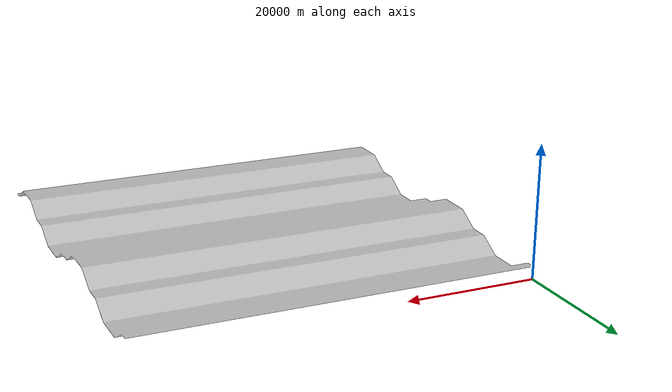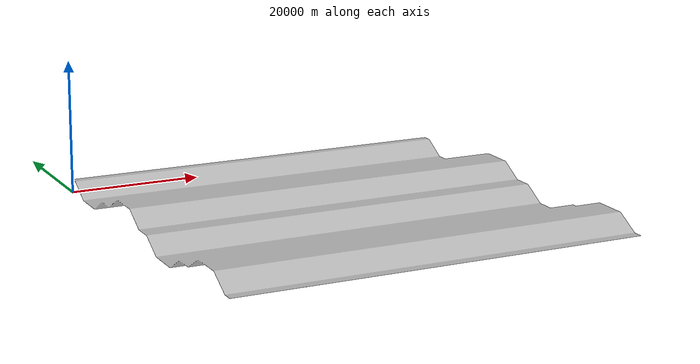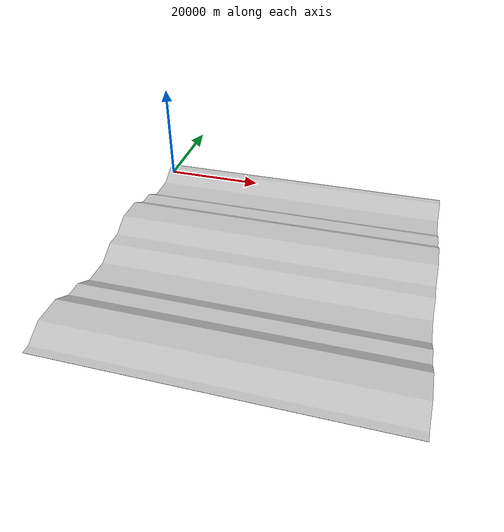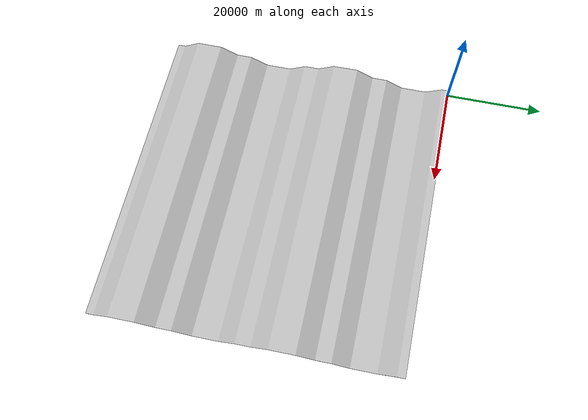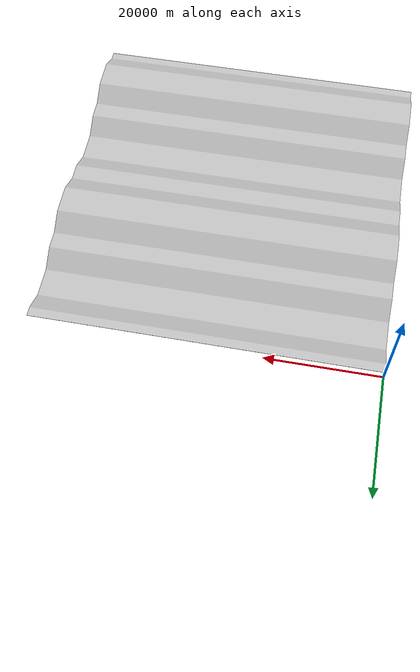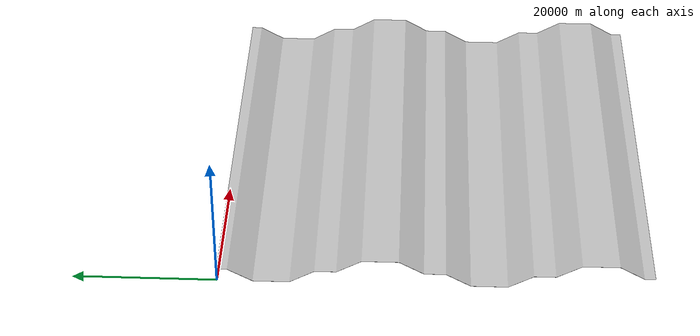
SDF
<?xml version="1.0" ?>
<sdf version="1.5">
  <world name="default">
    <!-- A global light source -->
    <include>
      <uri>model://sun</uri>
    </include>
    <!-- An undulating terrain -->
    <include>
      <uri>model://terrain_flat</uri>
    </include>

    <!-- Only one ROS interface plugin is required per world, as any other plugin can connect a Gazebo
         topic to a ROS topic (or vise versa). -->
    <plugin name="ros_interface_plugin" filename="librotors_gazebo_ros_interface_plugin.so"/>

    <physics name='default_physics' default='0' type='ode'>
      <gravity>0 0 -9.8066</gravity>
      <ode>
        <solver>
          <type>quick</type>
          <iters>10</iters>
          <sor>1.3</sor>
          <use_dynamic_moi_rescaling>0</use_dynamic_moi_rescaling>
        </solver>
        <constraints>
          <cfm>0</cfm>
          <erp>0.2</erp>
          <contact_max_correcting_vel>100</contact_max_correcting_vel>
          <contact_surface_layer>0.001</contact_surface_layer>
        </constraints>
      </ode>
      <max_step_size>0.002</max_step_size>
      <real_time_factor>1</real_time_factor>
      <real_time_update_rate>500</real_time_update_rate>
      <magnetic_field>6e-06 2.3e-05 -4.2e-05</magnetic_field>
    </physics>
  </world>
</sdf>

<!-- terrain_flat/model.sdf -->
<sdf version="1.5">
  <model name="terrain_flat">
    <pose>-18 18 -2 1.57 0 0</pose>
    <static>true</static>
    <link name="link">
      <collision name="collision">
        <geometry>
          <mesh>
            <uri>model://terrain_flat/meshes/terrain_flat.stl</uri>
          </mesh>
        </geometry>
      </collision>
      <visual name="visual">
        <cast_shadows>false</cast_shadows>
        <geometry>
          <mesh>
            <uri>model://terrain_flat/meshes/terrain_flat.stl</uri>
          </mesh>
        </geometry>
        <material>
          <script>
            <uri>model://terrain_flat/materials/scripts</uri>
            <uri>model://terrain_flat/materials/textures</uri>
            <name>vrc/forest</name>
          </script>
        </material>
      </visual>
    </link>
  </model>
</sdf>
